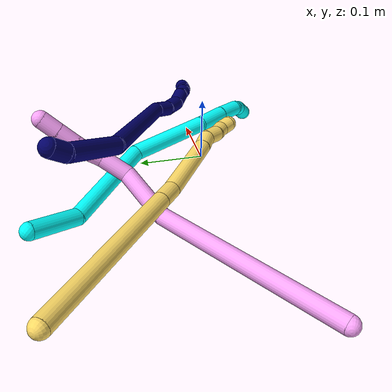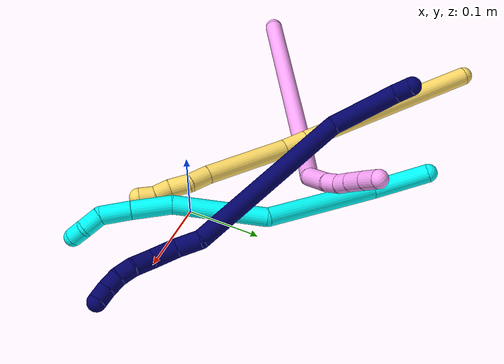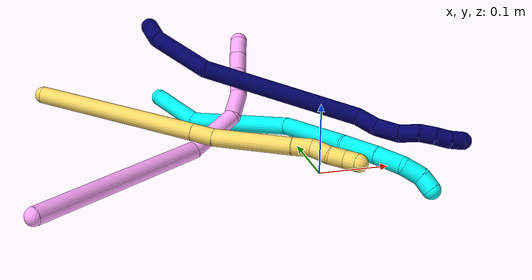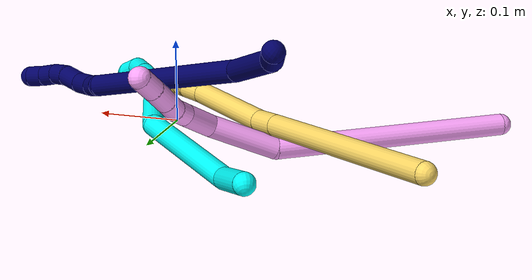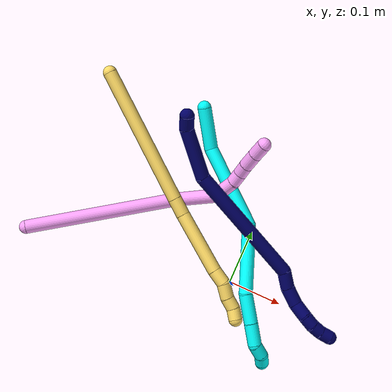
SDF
<sdf version="1.7">
 <world name="default">
  <model name="3">
   <static>0</static>
   <link name="3">
    <collision name="collision-cylinder-e_1_1_4">
     <pose>0.023321 -0.019604 -0.023768 2.45191 0.647927 1.50348</pose>
     <geometry><cylinder><radius>0.0125</radius><length>0.077282</length></cylinder></geometry>
     <surface>
      <friction><ode><mu>1.16</mu><mu2>1.16</mu2><slip1>0</slip1><slip2>0</slip2></ode></friction>
      <contact><ode><kp>1e+06</kp><kd>1</kd><max_vel>0</max_vel><min_depth>0.001</min_depth></ode></contact>
     </surface>
    </collision>
    <visual name="visual-cylinder-e_1_1_4">
     <pose>0.023321 -0.019604 -0.023768 2.45191 0.647927 1.50348</pose>
     <geometry><cylinder><radius>0.0125</radius><length>0.077282</length></cylinder></geometry>
     <material><ambient>0.003922 1 0.996078 1</ambient></material>
    </visual>
    <collision name="collision-cylinder-e_2_4_5">
     <pose>0.061471 -0.082851 -0.110801 2.53771 0.190595 0.595544</pose>
     <geometry><cylinder><radius>0.0125</radius><length>0.156549</length></cylinder></geometry>
     <surface>
      <friction><ode><mu>1.16</mu><mu2>1.16</mu2><slip1>0</slip1><slip2>0</slip2></ode></friction>
      <contact><ode><kp>1e+06</kp><kd>1</kd><max_vel>0</max_vel><min_depth>0.001</min_depth></ode></contact>
     </surface>
    </collision>
    <visual name="visual-cylinder-e_2_4_5">
     <pose>0.061471 -0.082851 -0.110801 2.53771 0.190595 0.595544</pose>
     <geometry><cylinder><radius>0.0125</radius><length>0.156549</length></cylinder></geometry>
     <material><ambient>0.003922 1 0.996078 1</ambient></material>
    </visual>
    <collision name="collision-cylinder-e_3_5_6">
     <pose>0.106876 -0.1366 -0.22748 2.9546 0.512358 2.45404</pose>
     <geometry><cylinder><radius>0.0125</radius><length>0.124744</length></cylinder></geometry>
     <surface>
      <friction><ode><mu>1.16</mu><mu2>1.16</mu2><slip1>0</slip1><slip2>0</slip2></ode></friction>
      <contact><ode><kp>1e+06</kp><kd>1</kd><max_vel>0</max_vel><min_depth>0.001</min_depth></ode></contact>
     </surface>
    </collision>
    <visual name="visual-cylinder-e_3_5_6">
     <pose>0.106876 -0.1366 -0.22748 2.9546 0.512358 2.45404</pose>
     <geometry><cylinder><radius>0.0125</radius><length>0.124744</length></cylinder></geometry>
     <material><ambient>0.003922 1 0.996078 1</ambient></material>
    </visual>
    <collision name="collision-cylinder-e_4_6_7">
     <pose>0.14973 -0.158018 -0.301801 2.64564 0.476732 1.52967</pose>
     <geometry><cylinder><radius>0.0125</radius><length>0.053507</length></cylinder></geometry>
     <surface>
      <friction><ode><mu>1.16</mu><mu2>1.16</mu2><slip1>0</slip1><slip2>0</slip2></ode></friction>
      <contact><ode><kp>1e+06</kp><kd>1</kd><max_vel>0</max_vel><min_depth>0.001</min_depth></ode></contact>
     </surface>
    </collision>
    <visual name="visual-cylinder-e_4_6_7">
     <pose>0.14973 -0.158018 -0.301801 2.64564 0.476732 1.52967</pose>
     <geometry><cylinder><radius>0.0125</radius><length>0.053507</length></cylinder></geometry>
     <material><ambient>0.003922 1 0.996078 1</ambient></material>
    </visual>
    <collision name="collision-cylinder-e_5_7_8">
     <pose>0.171904 -0.178277 -0.337716 2.604 0.515401 1.52664</pose>
     <geometry><cylinder><radius>0.0125</radius><length>0.040162</length></cylinder></geometry>
     <surface>
      <friction><ode><mu>1.16</mu><mu2>1.16</mu2><slip1>0</slip1><slip2>0</slip2></ode></friction>
      <contact><ode><kp>1e+06</kp><kd>1</kd><max_vel>0</max_vel><min_depth>0.001</min_depth></ode></contact>
     </surface>
    </collision>
    <visual name="visual-cylinder-e_5_7_8">
     <pose>0.171904 -0.178277 -0.337716 2.604 0.515401 1.52664</pose>
     <geometry><cylinder><radius>0.0125</radius><length>0.040162</length></cylinder></geometry>
     <material><ambient>0.003922 1 0.996078 1</ambient></material>
    </visual>
    <collision name="collision-cylinder-e_6_8_9">
     <pose>0.187953 -0.19773 -0.357911 2.02939 0.483438 0.755253</pose>
     <geometry><cylinder><radius>0.0125</radius><length>0.026467</length></cylinder></geometry>
     <surface>
      <friction><ode><mu>1.16</mu><mu2>1.16</mu2><slip1>0</slip1><slip2>0</slip2></ode></friction>
      <contact><ode><kp>1e+06</kp><kd>1</kd><max_vel>0</max_vel><min_depth>0.001</min_depth></ode></contact>
     </surface>
    </collision>
    <visual name="visual-cylinder-e_6_8_9">
     <pose>0.187953 -0.19773 -0.357911 2.02939 0.483438 0.755253</pose>
     <geometry><cylinder><radius>0.0125</radius><length>0.026467</length></cylinder></geometry>
     <material><ambient>0.003922 1 0.996078 1</ambient></material>
    </visual>
    <collision name="collision-cylinder-e_7_9_2">
     <pose>0.202407 -0.21455 -0.36522 1.89514 0.89468 1.17713</pose>
     <geometry><cylinder><radius>0.0125</radius><length>0.021288</length></cylinder></geometry>
     <surface>
      <friction><ode><mu>1.16</mu><mu2>1.16</mu2><slip1>0</slip1><slip2>0</slip2></ode></friction>
      <contact><ode><kp>1e+06</kp><kd>1</kd><max_vel>0</max_vel><min_depth>0.001</min_depth></ode></contact>
     </surface>
    </collision>
    <visual name="visual-cylinder-e_7_9_2">
     <pose>0.202407 -0.21455 -0.36522 1.89514 0.89468 1.17713</pose>
     <geometry><cylinder><radius>0.0125</radius><length>0.021288</length></cylinder></geometry>
     <material><ambient>0.003922 1 0.996078 1</ambient></material>
    </visual>
    <collision name="collision-sphere-2">
     <pose>0.21071 -0.220864 -0.367343 0 -0 0</pose>
     <geometry><sphere><radius>0.0125</radius></sphere></geometry>
     <surface>
      <friction><ode><mu>1.16</mu><mu2>1.16</mu2><slip1>0</slip1><slip2>0</slip2></ode></friction>
      <contact><ode><kp>1e+06</kp><kd>1</kd><max_vel>0</max_vel><min_depth>0.001</min_depth></ode></contact>
     </surface>
    </collision>
    <visual name="visual-sphere-2">
     <pose>0.21071 -0.220864 -0.367343 0 -0 0</pose>
     <geometry><sphere><radius>0.0125</radius></sphere></geometry>
     <material><ambient>0.003922 1 0.996078 1</ambient></material>
    </visual>
    <collision name="collision-sphere-9">
     <pose>0.194104 -0.208237 -0.363098 0 -0 0</pose>
     <geometry><sphere><radius>0.0125</radius></sphere></geometry>
     <surface>
      <friction><ode><mu>1.16</mu><mu2>1.16</mu2><slip1>0</slip1><slip2>0</slip2></ode></friction>
      <contact><ode><kp>1e+06</kp><kd>1</kd><max_vel>0</max_vel><min_depth>0.001</min_depth></ode></contact>
     </surface>
    </collision>
    <visual name="visual-sphere-9">
     <pose>0.194104 -0.208237 -0.363098 0 -0 0</pose>
     <geometry><sphere><radius>0.0125</radius></sphere></geometry>
     <material><ambient>0.003922 1 0.996078 1</ambient></material>
    </visual>
    <collision name="collision-sphere-4">
     <pose>0.046643 -0.039208 -0.047537 0 -0 0</pose>
     <geometry><sphere><radius>0.0125</radius></sphere></geometry>
     <surface>
      <friction><ode><mu>1.16</mu><mu2>1.16</mu2><slip1>0</slip1><slip2>0</slip2></ode></friction>
      <contact><ode><kp>1e+06</kp><kd>1</kd><max_vel>0</max_vel><min_depth>0.001</min_depth></ode></contact>
     </surface>
    </collision>
    <visual name="visual-sphere-4">
     <pose>0.046643 -0.039208 -0.047537 0 -0 0</pose>
     <geometry><sphere><radius>0.0125</radius></sphere></geometry>
     <material><ambient>0.003922 1 0.996078 1</ambient></material>
    </visual>
    <collision name="collision-sphere-1">
     <geometry><sphere><radius>0.0125</radius></sphere></geometry>
     <surface>
      <friction><ode><mu>1.16</mu><mu2>1.16</mu2><slip1>0</slip1><slip2>0</slip2></ode></friction>
      <contact><ode><kp>1e+06</kp><kd>1</kd><max_vel>0</max_vel><min_depth>0.001</min_depth></ode></contact>
     </surface>
    </collision>
    <visual name="visual-sphere-1">
     <geometry><sphere><radius>0.0125</radius></sphere></geometry>
     <material><ambient>0.003922 1 0.996078 1</ambient></material>
    </visual>
    <collision name="collision-sphere-8">
     <pose>0.181802 -0.187224 -0.352724 0 -0 0</pose>
     <geometry><sphere><radius>0.0125</radius></sphere></geometry>
     <surface>
      <friction><ode><mu>1.16</mu><mu2>1.16</mu2><slip1>0</slip1><slip2>0</slip2></ode></friction>
      <contact><ode><kp>1e+06</kp><kd>1</kd><max_vel>0</max_vel><min_depth>0.001</min_depth></ode></contact>
     </surface>
    </collision>
    <visual name="visual-sphere-8">
     <pose>0.181802 -0.187224 -0.352724 0 -0 0</pose>
     <geometry><sphere><radius>0.0125</radius></sphere></geometry>
     <material><ambient>0.003922 1 0.996078 1</ambient></material>
    </visual>
    <collision name="collision-sphere-5">
     <pose>0.0763 -0.126493 -0.174065 0 -0 0</pose>
     <geometry><sphere><radius>0.0125</radius></sphere></geometry>
     <surface>
      <friction><ode><mu>1.16</mu><mu2>1.16</mu2><slip1>0</slip1><slip2>0</slip2></ode></friction>
      <contact><ode><kp>1e+06</kp><kd>1</kd><max_vel>0</max_vel><min_depth>0.001</min_depth></ode></contact>
     </surface>
    </collision>
    <visual name="visual-sphere-5">
     <pose>0.0763 -0.126493 -0.174065 0 -0 0</pose>
     <geometry><sphere><radius>0.0125</radius></sphere></geometry>
     <material><ambient>0.003922 1 0.996078 1</ambient></material>
    </visual>
    <collision name="collision-sphere-6">
     <pose>0.137453 -0.146706 -0.280895 0 -0 0</pose>
     <geometry><sphere><radius>0.0125</radius></sphere></geometry>
     <surface>
      <friction><ode><mu>1.16</mu><mu2>1.16</mu2><slip1>0</slip1><slip2>0</slip2></ode></friction>
      <contact><ode><kp>1e+06</kp><kd>1</kd><max_vel>0</max_vel><min_depth>0.001</min_depth></ode></contact>
     </surface>
    </collision>
    <visual name="visual-sphere-6">
     <pose>0.137453 -0.146706 -0.280895 0 -0 0</pose>
     <geometry><sphere><radius>0.0125</radius></sphere></geometry>
     <material><ambient>0.003922 1 0.996078 1</ambient></material>
    </visual>
    <collision name="collision-sphere-7">
     <pose>0.162007 -0.16933 -0.322708 0 -0 0</pose>
     <geometry><sphere><radius>0.0125</radius></sphere></geometry>
     <surface>
      <friction><ode><mu>1.16</mu><mu2>1.16</mu2><slip1>0</slip1><slip2>0</slip2></ode></friction>
      <contact><ode><kp>1e+06</kp><kd>1</kd><max_vel>0</max_vel><min_depth>0.001</min_depth></ode></contact>
     </surface>
    </collision>
    <visual name="visual-sphere-7">
     <pose>0.162007 -0.16933 -0.322708 0 -0 0</pose>
     <geometry><sphere><radius>0.0125</radius></sphere></geometry>
     <material><ambient>0.003922 1 0.996078 1</ambient></material>
    </visual>
    <inertial>
     <pose>0.097914 -0.113882 -0.189038 0 -0 0</pose>
     <mass>0.5</mass>
     <inertia>
      <ixx>0.000501</ixx>
      <ixy>0</ixy>
      <ixz>0</ixz>
      <iyy>0.000262</iyy>
      <iyz>0</iyz>
      <izz>3.2e-05</izz>
     </inertia>
    </inertial>
   </link>
   <pose>-0.173805 0.270595 0.032411 2.50755 0.739184 -1.90192</pose>
  </model>
  <model name="4">
   <static>0</static>
   <link name="4">
    <collision name="collision-cylinder-e_1_1_4">
     <pose>0.100253 0.055476 -0.077902 -2.52277 0.80896 -1.85874</pose>
     <geometry><cylinder><radius>0.0125</radius><length>0.277106</length></cylinder></geometry>
     <surface>
      <friction><ode><mu>1.16</mu><mu2>1.16</mu2><slip1>0</slip1><slip2>0</slip2></ode></friction>
      <contact><ode><kp>1e+06</kp><kd>1</kd><max_vel>0</max_vel><min_depth>0.001</min_depth></ode></contact>
     </surface>
    </collision>
    <visual name="visual-cylinder-e_1_1_4">
     <pose>0.100253 0.055476 -0.077902 -2.52277 0.80896 -1.85874</pose>
     <geometry><cylinder><radius>0.0125</radius><length>0.277106</length></cylinder></geometry>
     <material><ambient>1 0.65098 0.996078 1</ambient></material>
    </visual>
    <collision name="collision-cylinder-e_2_4_5">
     <pose>0.235254 0.11147 -0.176354 -3.11641 1.03658 -3.09743</pose>
     <geometry><cylinder><radius>0.0125</radius><length>0.080749</length></cylinder></geometry>
     <surface>
      <friction><ode><mu>1.16</mu><mu2>1.16</mu2><slip1>0</slip1><slip2>0</slip2></ode></friction>
      <contact><ode><kp>1e+06</kp><kd>1</kd><max_vel>0</max_vel><min_depth>0.001</min_depth></ode></contact>
     </surface>
    </collision>
    <visual name="visual-cylinder-e_2_4_5">
     <pose>0.235254 0.11147 -0.176354 -3.11641 1.03658 -3.09743</pose>
     <geometry><cylinder><radius>0.0125</radius><length>0.080749</length></cylinder></geometry>
     <material><ambient>1 0.65098 0.996078 1</ambient></material>
    </visual>
    <collision name="collision-cylinder-e_3_5_6">
     <pose>0.291294 0.114159 -0.197404 -1.79672 1.46654 -1.69391</pose>
     <geometry><cylinder><radius>0.0125</radius><length>0.042814</length></cylinder></geometry>
     <surface>
      <friction><ode><mu>1.16</mu><mu2>1.16</mu2><slip1>0</slip1><slip2>0</slip2></ode></friction>
      <contact><ode><kp>1e+06</kp><kd>1</kd><max_vel>0</max_vel><min_depth>0.001</min_depth></ode></contact>
     </surface>
    </collision>
    <visual name="visual-cylinder-e_3_5_6">
     <pose>0.291294 0.114159 -0.197404 -1.79672 1.46654 -1.69391</pose>
     <geometry><cylinder><radius>0.0125</radius><length>0.042814</length></cylinder></geometry>
     <material><ambient>1 0.65098 0.996078 1</ambient></material>
    </visual>
    <collision name="collision-cylinder-e_4_6_7">
     <pose>0.323199 0.118082 -0.195662 -0.663527 1.30897 -0.516846</pose>
     <geometry><cylinder><radius>0.0125</radius><length>0.021977</length></cylinder></geometry>
     <surface>
      <friction><ode><mu>1.16</mu><mu2>1.16</mu2><slip1>0</slip1><slip2>0</slip2></ode></friction>
      <contact><ode><kp>1e+06</kp><kd>1</kd><max_vel>0</max_vel><min_depth>0.001</min_depth></ode></contact>
     </surface>
    </collision>
    <visual name="visual-cylinder-e_4_6_7">
     <pose>0.323199 0.118082 -0.195662 -0.663527 1.30897 -0.516846</pose>
     <geometry><cylinder><radius>0.0125</radius><length>0.021977</length></cylinder></geometry>
     <material><ambient>1 0.65098 0.996078 1</ambient></material>
    </visual>
    <collision name="collision-cylinder-e_5_7_8">
     <pose>0.344014 0.119394 -0.190842 0.169087 1.31968 0.13131</pose>
     <geometry><cylinder><radius>0.0125</radius><length>0.021063</length></cylinder></geometry>
     <surface>
      <friction><ode><mu>1.16</mu><mu2>1.16</mu2><slip1>0</slip1><slip2>0</slip2></ode></friction>
      <contact><ode><kp>1e+06</kp><kd>1</kd><max_vel>0</max_vel><min_depth>0.001</min_depth></ode></contact>
     </surface>
    </collision>
    <visual name="visual-cylinder-e_5_7_8">
     <pose>0.344014 0.119394 -0.190842 0.169087 1.31968 0.13131</pose>
     <geometry><cylinder><radius>0.0125</radius><length>0.021063</length></cylinder></geometry>
     <material><ambient>1 0.65098 0.996078 1</ambient></material>
    </visual>
    <collision name="collision-cylinder-e_6_8_9">
     <pose>0.36836 0.118198 -0.185443 0.261893 1.36733 0.213785</pose>
     <geometry><cylinder><radius>0.0125</radius><length>0.028886</length></cylinder></geometry>
     <surface>
      <friction><ode><mu>1.16</mu><mu2>1.16</mu2><slip1>0</slip1><slip2>0</slip2></ode></friction>
      <contact><ode><kp>1e+06</kp><kd>1</kd><max_vel>0</max_vel><min_depth>0.001</min_depth></ode></contact>
     </surface>
    </collision>
    <visual name="visual-cylinder-e_6_8_9">
     <pose>0.36836 0.118198 -0.185443 0.261893 1.36733 0.213785</pose>
     <geometry><cylinder><radius>0.0125</radius><length>0.028886</length></cylinder></geometry>
     <material><ambient>1 0.65098 0.996078 1</ambient></material>
    </visual>
    <collision name="collision-cylinder-e_7_9_2">
     <pose>0.395991 0.116785 -0.180287 0.27393 1.39264 0.229441</pose>
     <geometry><cylinder><radius>0.0125</radius><length>0.027405</length></cylinder></geometry>
     <surface>
      <friction><ode><mu>1.16</mu><mu2>1.16</mu2><slip1>0</slip1><slip2>0</slip2></ode></friction>
      <contact><ode><kp>1e+06</kp><kd>1</kd><max_vel>0</max_vel><min_depth>0.001</min_depth></ode></contact>
     </surface>
    </collision>
    <visual name="visual-cylinder-e_7_9_2">
     <pose>0.395991 0.116785 -0.180287 0.27393 1.39264 0.229441</pose>
     <geometry><cylinder><radius>0.0125</radius><length>0.027405</length></cylinder></geometry>
     <material><ambient>1 0.65098 0.996078 1</ambient></material>
    </visual>
    <collision name="collision-sphere-2">
     <pose>0.409477 0.116128 -0.177949 0 -0 0</pose>
     <geometry><sphere><radius>0.0125</radius></sphere></geometry>
     <surface>
      <friction><ode><mu>1.16</mu><mu2>1.16</mu2><slip1>0</slip1><slip2>0</slip2></ode></friction>
      <contact><ode><kp>1e+06</kp><kd>1</kd><max_vel>0</max_vel><min_depth>0.001</min_depth></ode></contact>
     </surface>
    </collision>
    <visual name="visual-sphere-2">
     <pose>0.409477 0.116128 -0.177949 0 -0 0</pose>
     <geometry><sphere><radius>0.0125</radius></sphere></geometry>
     <material><ambient>1 0.65098 0.996078 1</ambient></material>
    </visual>
    <collision name="collision-sphere-9">
     <pose>0.382505 0.117442 -0.182624 0 -0 0</pose>
     <geometry><sphere><radius>0.0125</radius></sphere></geometry>
     <surface>
      <friction><ode><mu>1.16</mu><mu2>1.16</mu2><slip1>0</slip1><slip2>0</slip2></ode></friction>
      <contact><ode><kp>1e+06</kp><kd>1</kd><max_vel>0</max_vel><min_depth>0.001</min_depth></ode></contact>
     </surface>
    </collision>
    <visual name="visual-sphere-9">
     <pose>0.382505 0.117442 -0.182624 0 -0 0</pose>
     <geometry><sphere><radius>0.0125</radius></sphere></geometry>
     <material><ambient>1 0.65098 0.996078 1</ambient></material>
    </visual>
    <collision name="collision-sphere-4">
     <pose>0.200505 0.110953 -0.155804 0 -0 0</pose>
     <geometry><sphere><radius>0.0125</radius></sphere></geometry>
     <surface>
      <friction><ode><mu>1.16</mu><mu2>1.16</mu2><slip1>0</slip1><slip2>0</slip2></ode></friction>
      <contact><ode><kp>1e+06</kp><kd>1</kd><max_vel>0</max_vel><min_depth>0.001</min_depth></ode></contact>
     </surface>
    </collision>
    <visual name="visual-sphere-4">
     <pose>0.200505 0.110953 -0.155804 0 -0 0</pose>
     <geometry><sphere><radius>0.0125</radius></sphere></geometry>
     <material><ambient>1 0.65098 0.996078 1</ambient></material>
    </visual>
    <collision name="collision-sphere-1">
     <geometry><sphere><radius>0.0125</radius></sphere></geometry>
     <surface>
      <friction><ode><mu>1.16</mu><mu2>1.16</mu2><slip1>0</slip1><slip2>0</slip2></ode></friction>
      <contact><ode><kp>1e+06</kp><kd>1</kd><max_vel>0</max_vel><min_depth>0.001</min_depth></ode></contact>
     </surface>
    </collision>
    <visual name="visual-sphere-1">
     <geometry><sphere><radius>0.0125</radius></sphere></geometry>
     <material><ambient>1 0.65098 0.996078 1</ambient></material>
    </visual>
    <collision name="collision-sphere-8">
     <pose>0.354215 0.118953 -0.188262 0 -0 0</pose>
     <geometry><sphere><radius>0.0125</radius></sphere></geometry>
     <surface>
      <friction><ode><mu>1.16</mu><mu2>1.16</mu2><slip1>0</slip1><slip2>0</slip2></ode></friction>
      <contact><ode><kp>1e+06</kp><kd>1</kd><max_vel>0</max_vel><min_depth>0.001</min_depth></ode></contact>
     </surface>
    </collision>
    <visual name="visual-sphere-8">
     <pose>0.354215 0.118953 -0.188262 0 -0 0</pose>
     <geometry><sphere><radius>0.0125</radius></sphere></geometry>
     <material><ambient>1 0.65098 0.996078 1</ambient></material>
    </visual>
    <collision name="collision-sphere-5">
     <pose>0.270003 0.111988 -0.196905 0 -0 0</pose>
     <geometry><sphere><radius>0.0125</radius></sphere></geometry>
     <surface>
      <friction><ode><mu>1.16</mu><mu2>1.16</mu2><slip1>0</slip1><slip2>0</slip2></ode></friction>
      <contact><ode><kp>1e+06</kp><kd>1</kd><max_vel>0</max_vel><min_depth>0.001</min_depth></ode></contact>
     </surface>
    </collision>
    <visual name="visual-sphere-5">
     <pose>0.270003 0.111988 -0.196905 0 -0 0</pose>
     <geometry><sphere><radius>0.0125</radius></sphere></geometry>
     <material><ambient>1 0.65098 0.996078 1</ambient></material>
    </visual>
    <collision name="collision-sphere-6">
     <pose>0.312585 0.11633 -0.197903 0 -0 0</pose>
     <geometry><sphere><radius>0.0125</radius></sphere></geometry>
     <surface>
      <friction><ode><mu>1.16</mu><mu2>1.16</mu2><slip1>0</slip1><slip2>0</slip2></ode></friction>
      <contact><ode><kp>1e+06</kp><kd>1</kd><max_vel>0</max_vel><min_depth>0.001</min_depth></ode></contact>
     </surface>
    </collision>
    <visual name="visual-sphere-6">
     <pose>0.312585 0.11633 -0.197903 0 -0 0</pose>
     <geometry><sphere><radius>0.0125</radius></sphere></geometry>
     <material><ambient>1 0.65098 0.996078 1</ambient></material>
    </visual>
    <collision name="collision-sphere-7">
     <pose>0.333813 0.119834 -0.193422 0 -0 0</pose>
     <geometry><sphere><radius>0.0125</radius></sphere></geometry>
     <surface>
      <friction><ode><mu>1.16</mu><mu2>1.16</mu2><slip1>0</slip1><slip2>0</slip2></ode></friction>
      <contact><ode><kp>1e+06</kp><kd>1</kd><max_vel>0</max_vel><min_depth>0.001</min_depth></ode></contact>
     </surface>
    </collision>
    <visual name="visual-sphere-7">
     <pose>0.333813 0.119834 -0.193422 0 -0 0</pose>
     <geometry><sphere><radius>0.0125</radius></sphere></geometry>
     <material><ambient>1 0.65098 0.996078 1</ambient></material>
    </visual>
    <inertial>
     <pose>0.19018 0.081972 -0.125793 0 -0 0</pose>
     <mass>0.5</mass>
     <inertia>
      <ixx>-0.001522</ixx>
      <ixy>0</ixy>
      <ixz>0</ixz>
      <iyy>2.2e-05</iyy>
      <iyz>0</iyz>
      <izz>-0.002078</izz>
     </inertia>
    </inertial>
   </link>
   <pose>-0.383187 -0.060268 0.013576 -1.33017 -0.617348 1.07076</pose>
  </model>
  <model name="5">
   <static>0</static>
   <link name="5">
    <collision name="collision-cylinder-e_1_1_4">
     <pose>0.006339 -0.00208 -0.126302 3.12513 0.050141 2.50719</pose>
     <geometry><cylinder><radius>0.0125</radius><length>0.252955</length></cylinder></geometry>
     <surface>
      <friction><ode><mu>1.16</mu><mu2>1.16</mu2><slip1>0</slip1><slip2>0</slip2></ode></friction>
      <contact><ode><kp>1e+06</kp><kd>1</kd><max_vel>0</max_vel><min_depth>0.001</min_depth></ode></contact>
     </surface>
    </collision>
    <visual name="visual-cylinder-e_1_1_4">
     <pose>0.006339 -0.00208 -0.126302 3.12513 0.050141 2.50719</pose>
     <geometry><cylinder><radius>0.0125</radius><length>0.252955</length></cylinder></geometry>
     <material><ambient>1 0.858824 0.4 1</ambient></material>
    </visual>
    <collision name="collision-cylinder-e_2_4_5">
     <pose>0.013418 -0.004192 -0.269017 3.1396 0.045026 3.05314</pose>
     <geometry><cylinder><radius>0.0125</radius><length>0.032861</length></cylinder></geometry>
     <surface>
      <friction><ode><mu>1.16</mu><mu2>1.16</mu2><slip1>0</slip1><slip2>0</slip2></ode></friction>
      <contact><ode><kp>1e+06</kp><kd>1</kd><max_vel>0</max_vel><min_depth>0.001</min_depth></ode></contact>
     </surface>
    </collision>
    <visual name="visual-cylinder-e_2_4_5">
     <pose>0.013418 -0.004192 -0.269017 3.1396 0.045026 3.05314</pose>
     <geometry><cylinder><radius>0.0125</radius><length>0.032861</length></cylinder></geometry>
     <material><ambient>1 0.858824 0.4 1</ambient></material>
    </visual>
    <collision name="collision-cylinder-e_3_5_6">
     <pose>0.023842 -0.007533 -0.342497 3.08368 0.167832 2.47838</pose>
     <geometry><cylinder><radius>0.0125</radius><length>0.115952</length></cylinder></geometry>
     <surface>
      <friction><ode><mu>1.16</mu><mu2>1.16</mu2><slip1>0</slip1><slip2>0</slip2></ode></friction>
      <contact><ode><kp>1e+06</kp><kd>1</kd><max_vel>0</max_vel><min_depth>0.001</min_depth></ode></contact>
     </surface>
    </collision>
    <visual name="visual-cylinder-e_3_5_6">
     <pose>0.023842 -0.007533 -0.342497 3.08368 0.167832 2.47838</pose>
     <geometry><cylinder><radius>0.0125</radius><length>0.115952</length></cylinder></geometry>
     <material><ambient>1 0.858824 0.4 1</ambient></material>
    </visual>
    <collision name="collision-cylinder-e_4_6_7">
     <pose>0.036602 -0.010276 -0.413022 -3.09965 0.22443 -2.77351</pose>
     <geometry><cylinder><radius>0.0125</radius><length>0.027636</length></cylinder></geometry>
     <surface>
      <friction><ode><mu>1.16</mu><mu2>1.16</mu2><slip1>0</slip1><slip2>0</slip2></ode></friction>
      <contact><ode><kp>1e+06</kp><kd>1</kd><max_vel>0</max_vel><min_depth>0.001</min_depth></ode></contact>
     </surface>
    </collision>
    <visual name="visual-cylinder-e_4_6_7">
     <pose>0.036602 -0.010276 -0.413022 -3.09965 0.22443 -2.77351</pose>
     <geometry><cylinder><radius>0.0125</radius><length>0.027636</length></cylinder></geometry>
     <material><ambient>1 0.858824 0.4 1</ambient></material>
    </visual>
    <collision name="collision-cylinder-e_5_7_8">
     <pose>0.037794 -0.011793 -0.439941 2.98814 -0.137373 -1.45992</pose>
     <geometry><cylinder><radius>0.0125</radius><length>0.027497</length></cylinder></geometry>
     <surface>
      <friction><ode><mu>1.16</mu><mu2>1.16</mu2><slip1>0</slip1><slip2>0</slip2></ode></friction>
      <contact><ode><kp>1e+06</kp><kd>1</kd><max_vel>0</max_vel><min_depth>0.001</min_depth></ode></contact>
     </surface>
    </collision>
    <visual name="visual-cylinder-e_5_7_8">
     <pose>0.037794 -0.011793 -0.439941 2.98814 -0.137373 -1.45992</pose>
     <geometry><cylinder><radius>0.0125</radius><length>0.027497</length></cylinder></geometry>
     <material><ambient>1 0.858824 0.4 1</ambient></material>
    </visual>
    <collision name="collision-cylinder-e_6_8_9">
     <pose>0.036469 -0.013452 -0.464554 -3.10373 0.049879 -1.8432</pose>
     <geometry><cylinder><radius>0.0125</radius><length>0.022353</length></cylinder></geometry>
     <surface>
      <friction><ode><mu>1.16</mu><mu2>1.16</mu2><slip1>0</slip1><slip2>0</slip2></ode></friction>
      <contact><ode><kp>1e+06</kp><kd>1</kd><max_vel>0</max_vel><min_depth>0.001</min_depth></ode></contact>
     </surface>
    </collision>
    <visual name="visual-cylinder-e_6_8_9">
     <pose>0.036469 -0.013452 -0.464554 -3.10373 0.049879 -1.8432</pose>
     <geometry><cylinder><radius>0.0125</radius><length>0.022353</length></cylinder></geometry>
     <material><ambient>1 0.858824 0.4 1</ambient></material>
    </visual>
    <collision name="collision-cylinder-e_7_9_2">
     <pose>0.036754 -0.016153 -0.485596 2.83563 -0.026187 -0.169448</pose>
     <geometry><cylinder><radius>0.0125</radius><length>0.020745</length></cylinder></geometry>
     <surface>
      <friction><ode><mu>1.16</mu><mu2>1.16</mu2><slip1>0</slip1><slip2>0</slip2></ode></friction>
      <contact><ode><kp>1e+06</kp><kd>1</kd><max_vel>0</max_vel><min_depth>0.001</min_depth></ode></contact>
     </surface>
    </collision>
    <visual name="visual-cylinder-e_7_9_2">
     <pose>0.036754 -0.016153 -0.485596 2.83563 -0.026187 -0.169448</pose>
     <geometry><cylinder><radius>0.0125</radius><length>0.020745</length></cylinder></geometry>
     <material><ambient>1 0.858824 0.4 1</ambient></material>
    </visual>
    <collision name="collision-sphere-2">
     <pose>0.036483 -0.019276 -0.495484 0 -0 0</pose>
     <geometry><sphere><radius>0.0125</radius></sphere></geometry>
     <surface>
      <friction><ode><mu>1.16</mu><mu2>1.16</mu2><slip1>0</slip1><slip2>0</slip2></ode></friction>
      <contact><ode><kp>1e+06</kp><kd>1</kd><max_vel>0</max_vel><min_depth>0.001</min_depth></ode></contact>
     </surface>
    </collision>
    <visual name="visual-sphere-2">
     <pose>0.036483 -0.019276 -0.495484 0 -0 0</pose>
     <geometry><sphere><radius>0.0125</radius></sphere></geometry>
     <material><ambient>1 0.858824 0.4 1</ambient></material>
    </visual>
    <collision name="collision-sphere-9">
     <pose>0.037026 -0.01303 -0.475709 0 -0 0</pose>
     <geometry><sphere><radius>0.0125</radius></sphere></geometry>
     <surface>
      <friction><ode><mu>1.16</mu><mu2>1.16</mu2><slip1>0</slip1><slip2>0</slip2></ode></friction>
      <contact><ode><kp>1e+06</kp><kd>1</kd><max_vel>0</max_vel><min_depth>0.001</min_depth></ode></contact>
     </surface>
    </collision>
    <visual name="visual-sphere-9">
     <pose>0.037026 -0.01303 -0.475709 0 -0 0</pose>
     <geometry><sphere><radius>0.0125</radius></sphere></geometry>
     <material><ambient>1 0.858824 0.4 1</ambient></material>
    </visual>
    <collision name="collision-sphere-4">
     <pose>0.012678 -0.004159 -0.252603 0 -0 0</pose>
     <geometry><sphere><radius>0.0125</radius></sphere></geometry>
     <surface>
      <friction><ode><mu>1.16</mu><mu2>1.16</mu2><slip1>0</slip1><slip2>0</slip2></ode></friction>
      <contact><ode><kp>1e+06</kp><kd>1</kd><max_vel>0</max_vel><min_depth>0.001</min_depth></ode></contact>
     </surface>
    </collision>
    <visual name="visual-sphere-4">
     <pose>0.012678 -0.004159 -0.252603 0 -0 0</pose>
     <geometry><sphere><radius>0.0125</radius></sphere></geometry>
     <material><ambient>1 0.858824 0.4 1</ambient></material>
    </visual>
    <collision name="collision-sphere-1">
     <geometry><sphere><radius>0.0125</radius></sphere></geometry>
     <surface>
      <friction><ode><mu>1.16</mu><mu2>1.16</mu2><slip1>0</slip1><slip2>0</slip2></ode></friction>
      <contact><ode><kp>1e+06</kp><kd>1</kd><max_vel>0</max_vel><min_depth>0.001</min_depth></ode></contact>
     </surface>
    </collision>
    <visual name="visual-sphere-1">
     <geometry><sphere><radius>0.0125</radius></sphere></geometry>
     <material><ambient>1 0.858824 0.4 1</ambient></material>
    </visual>
    <collision name="collision-sphere-8">
     <pose>0.035911 -0.013875 -0.4534 0 -0 0</pose>
     <geometry><sphere><radius>0.0125</radius></sphere></geometry>
     <surface>
      <friction><ode><mu>1.16</mu><mu2>1.16</mu2><slip1>0</slip1><slip2>0</slip2></ode></friction>
      <contact><ode><kp>1e+06</kp><kd>1</kd><max_vel>0</max_vel><min_depth>0.001</min_depth></ode></contact>
     </surface>
    </collision>
    <visual name="visual-sphere-8">
     <pose>0.035911 -0.013875 -0.4534 0 -0 0</pose>
     <geometry><sphere><radius>0.0125</radius></sphere></geometry>
     <material><ambient>1 0.858824 0.4 1</ambient></material>
    </visual>
    <collision name="collision-sphere-5">
     <pose>0.014157 -0.004225 -0.285431 0 -0 0</pose>
     <geometry><sphere><radius>0.0125</radius></sphere></geometry>
     <surface>
      <friction><ode><mu>1.16</mu><mu2>1.16</mu2><slip1>0</slip1><slip2>0</slip2></ode></friction>
      <contact><ode><kp>1e+06</kp><kd>1</kd><max_vel>0</max_vel><min_depth>0.001</min_depth></ode></contact>
     </surface>
    </collision>
    <visual name="visual-sphere-5">
     <pose>0.014157 -0.004225 -0.285431 0 -0 0</pose>
     <geometry><sphere><radius>0.0125</radius></sphere></geometry>
     <material><ambient>1 0.858824 0.4 1</ambient></material>
    </visual>
    <collision name="collision-sphere-6">
     <pose>0.033527 -0.010841 -0.399562 0 -0 0</pose>
     <geometry><sphere><radius>0.0125</radius></sphere></geometry>
     <surface>
      <friction><ode><mu>1.16</mu><mu2>1.16</mu2><slip1>0</slip1><slip2>0</slip2></ode></friction>
      <contact><ode><kp>1e+06</kp><kd>1</kd><max_vel>0</max_vel><min_depth>0.001</min_depth></ode></contact>
     </surface>
    </collision>
    <visual name="visual-sphere-6">
     <pose>0.033527 -0.010841 -0.399562 0 -0 0</pose>
     <geometry><sphere><radius>0.0125</radius></sphere></geometry>
     <material><ambient>1 0.858824 0.4 1</ambient></material>
    </visual>
    <collision name="collision-sphere-7">
     <pose>0.039677 -0.009711 -0.426482 0 -0 0</pose>
     <geometry><sphere><radius>0.0125</radius></sphere></geometry>
     <surface>
      <friction><ode><mu>1.16</mu><mu2>1.16</mu2><slip1>0</slip1><slip2>0</slip2></ode></friction>
      <contact><ode><kp>1e+06</kp><kd>1</kd><max_vel>0</max_vel><min_depth>0.001</min_depth></ode></contact>
     </surface>
    </collision>
    <visual name="visual-sphere-7">
     <pose>0.039677 -0.009711 -0.426482 0 -0 0</pose>
     <geometry><sphere><radius>0.0125</radius></sphere></geometry>
     <material><ambient>1 0.858824 0.4 1</ambient></material>
    </visual>
    <inertial>
     <pose>0.016875 -0.005563 -0.248943 0 -0 0</pose>
     <mass>0.5</mass>
     <inertia>
      <ixx>-0.000319</ixx>
      <ixy>0</ixy>
      <ixz>0</ixz>
      <iyy>0.002086</iyy>
      <iyz>0</iyz>
      <izz>-9.9e-05</izz>
     </inertia>
    </inertial>
   </link>
   <pose>-0.352291 0.255282 0.057654 -1.36188 -0.923243 0.712102</pose>
  </model>
  <model name="7">
   <static>0</static>
   <link name="7">
    <collision name="collision-cylinder-e_1_1_4">
     <pose>0.004987 0.006053 0.009355 -0.574258 0.420799 -0.125957</pose>
     <geometry><cylinder><radius>0.0125</radius><length>0.024416</length></cylinder></geometry>
     <surface>
      <friction><ode><mu>1.16</mu><mu2>1.16</mu2><slip1>0</slip1><slip2>0</slip2></ode></friction>
      <contact><ode><kp>1e+06</kp><kd>1</kd><max_vel>0</max_vel><min_depth>0.001</min_depth></ode></contact>
     </surface>
    </collision>
    <visual name="visual-cylinder-e_1_1_4">
     <pose>0.004987 0.006053 0.009355 -0.574258 0.420799 -0.125957</pose>
     <geometry><cylinder><radius>0.0125</radius><length>0.024416</length></cylinder></geometry>
     <material><ambient>0.003922 0 0.403922 1</ambient></material>
    </visual>
    <collision name="collision-cylinder-e_2_4_5">
     <pose>0.037497 0.018748 0.054325 -0.184374 0.64971 -0.062251</pose>
     <geometry><cylinder><radius>0.0125</radius><length>0.090995</length></cylinder></geometry>
     <surface>
      <friction><ode><mu>1.16</mu><mu2>1.16</mu2><slip1>0</slip1><slip2>0</slip2></ode></friction>
      <contact><ode><kp>1e+06</kp><kd>1</kd><max_vel>0</max_vel><min_depth>0.001</min_depth></ode></contact>
     </surface>
    </collision>
    <visual name="visual-cylinder-e_2_4_5">
     <pose>0.037497 0.018748 0.054325 -0.184374 0.64971 -0.062251</pose>
     <geometry><cylinder><radius>0.0125</radius><length>0.090995</length></cylinder></geometry>
     <material><ambient>0.003922 0 0.403922 1</ambient></material>
    </visual>
    <collision name="collision-cylinder-e_3_5_6">
     <pose>0.128013 -0.001626 0.181453 0.287052 0.583482 0.086747</pose>
     <geometry><cylinder><radius>0.0125</radius><length>0.228671</length></cylinder></geometry>
     <surface>
      <friction><ode><mu>1.16</mu><mu2>1.16</mu2><slip1>0</slip1><slip2>0</slip2></ode></friction>
      <contact><ode><kp>1e+06</kp><kd>1</kd><max_vel>0</max_vel><min_depth>0.001</min_depth></ode></contact>
     </surface>
    </collision>
    <visual name="visual-cylinder-e_3_5_6">
     <pose>0.128013 -0.001626 0.181453 0.287052 0.583482 0.086747</pose>
     <geometry><cylinder><radius>0.0125</radius><length>0.228671</length></cylinder></geometry>
     <material><ambient>0.003922 0 0.403922 1</ambient></material>
    </visual>
    <collision name="collision-cylinder-e_4_6_7">
     <pose>0.201927 -0.025384 0.284169 -0.282995 0.752539 -0.112443</pose>
     <geometry><cylinder><radius>0.0125</radius><length>0.031964</length></cylinder></geometry>
     <surface>
      <friction><ode><mu>1.16</mu><mu2>1.16</mu2><slip1>0</slip1><slip2>0</slip2></ode></friction>
      <contact><ode><kp>1e+06</kp><kd>1</kd><max_vel>0</max_vel><min_depth>0.001</min_depth></ode></contact>
     </surface>
    </collision>
    <visual name="visual-cylinder-e_4_6_7">
     <pose>0.201927 -0.025384 0.284169 -0.282995 0.752539 -0.112443</pose>
     <geometry><cylinder><radius>0.0125</radius><length>0.031964</length></cylinder></geometry>
     <material><ambient>0.003922 0 0.403922 1</ambient></material>
    </visual>
    <collision name="collision-cylinder-e_5_7_8">
     <pose>0.225243 -0.02297 0.306609 0.074885 0.832801 0.033131</pose>
     <geometry><cylinder><radius>0.0125</radius><length>0.033499</length></cylinder></geometry>
     <surface>
      <friction><ode><mu>1.16</mu><mu2>1.16</mu2><slip1>0</slip1><slip2>0</slip2></ode></friction>
      <contact><ode><kp>1e+06</kp><kd>1</kd><max_vel>0</max_vel><min_depth>0.001</min_depth></ode></contact>
     </surface>
    </collision>
    <visual name="visual-cylinder-e_5_7_8">
     <pose>0.225243 -0.02297 0.306609 0.074885 0.832801 0.033131</pose>
     <geometry><cylinder><radius>0.0125</radius><length>0.033499</length></cylinder></geometry>
     <material><ambient>0.003922 0 0.403922 1</ambient></material>
    </visual>
    <collision name="collision-cylinder-e_6_8_9">
     <pose>0.249113 -0.028175 0.324925 0.552309 0.943965 0.287332</pose>
     <geometry><cylinder><radius>0.0125</radius><length>0.028346</length></cylinder></geometry>
     <surface>
      <friction><ode><mu>1.16</mu><mu2>1.16</mu2><slip1>0</slip1><slip2>0</slip2></ode></friction>
      <contact><ode><kp>1e+06</kp><kd>1</kd><max_vel>0</max_vel><min_depth>0.001</min_depth></ode></contact>
     </surface>
    </collision>
    <visual name="visual-cylinder-e_6_8_9">
     <pose>0.249113 -0.028175 0.324925 0.552309 0.943965 0.287332</pose>
     <geometry><cylinder><radius>0.0125</radius><length>0.028346</length></cylinder></geometry>
     <material><ambient>0.003922 0 0.403922 1</ambient></material>
    </visual>
    <collision name="collision-cylinder-e_7_9_10">
     <pose>0.267702 -0.035287 0.339577 0.348324 0.722947 0.132849</pose>
     <geometry><cylinder><radius>0.0125</radius><length>0.021494</length></cylinder></geometry>
     <surface>
      <friction><ode><mu>1.16</mu><mu2>1.16</mu2><slip1>0</slip1><slip2>0</slip2></ode></friction>
      <contact><ode><kp>1e+06</kp><kd>1</kd><max_vel>0</max_vel><min_depth>0.001</min_depth></ode></contact>
     </surface>
    </collision>
    <visual name="visual-cylinder-e_7_9_10">
     <pose>0.267702 -0.035287 0.339577 0.348324 0.722947 0.132849</pose>
     <geometry><cylinder><radius>0.0125</radius><length>0.021494</length></cylinder></geometry>
     <material><ambient>0.003922 0 0.403922 1</ambient></material>
    </visual>
    <collision name="collision-cylinder-e_8_10_11">
     <pose>0.279752 -0.041657 0.355423 0.41244 0.500614 0.106867</pose>
     <geometry><cylinder><radius>0.0125</radius><length>0.020581</length></cylinder></geometry>
     <surface>
      <friction><ode><mu>1.16</mu><mu2>1.16</mu2><slip1>0</slip1><slip2>0</slip2></ode></friction>
      <contact><ode><kp>1e+06</kp><kd>1</kd><max_vel>0</max_vel><min_depth>0.001</min_depth></ode></contact>
     </surface>
    </collision>
    <visual name="visual-cylinder-e_8_10_11">
     <pose>0.279752 -0.041657 0.355423 0.41244 0.500614 0.106867</pose>
     <geometry><cylinder><radius>0.0125</radius><length>0.020581</length></cylinder></geometry>
     <material><ambient>0.003922 0 0.403922 1</ambient></material>
    </visual>
    <collision name="collision-cylinder-e_9_11_2">
     <pose>0.289016 -0.050645 0.370959 0.636478 0.446465 0.149297</pose>
     <geometry><cylinder><radius>0.0125</radius><length>0.020033</length></cylinder></geometry>
     <surface>
      <friction><ode><mu>1.16</mu><mu2>1.16</mu2><slip1>0</slip1><slip2>0</slip2></ode></friction>
      <contact><ode><kp>1e+06</kp><kd>1</kd><max_vel>0</max_vel><min_depth>0.001</min_depth></ode></contact>
     </surface>
    </collision>
    <visual name="visual-cylinder-e_9_11_2">
     <pose>0.289016 -0.050645 0.370959 0.636478 0.446465 0.149297</pose>
     <geometry><cylinder><radius>0.0125</radius><length>0.020033</length></cylinder></geometry>
     <material><ambient>0.003922 0 0.403922 1</ambient></material>
    </visual>
    <collision name="collision-sphere-2">
     <pose>0.293341 -0.056015 0.378225 0 -0 0</pose>
     <geometry><sphere><radius>0.0125</radius></sphere></geometry>
     <surface>
      <friction><ode><mu>1.16</mu><mu2>1.16</mu2><slip1>0</slip1><slip2>0</slip2></ode></friction>
      <contact><ode><kp>1e+06</kp><kd>1</kd><max_vel>0</max_vel><min_depth>0.001</min_depth></ode></contact>
     </surface>
    </collision>
    <visual name="visual-sphere-2">
     <pose>0.293341 -0.056015 0.378225 0 -0 0</pose>
     <geometry><sphere><radius>0.0125</radius></sphere></geometry>
     <material><ambient>0.003922 0 0.403922 1</ambient></material>
    </visual>
    <collision name="collision-sphere-11">
     <pose>0.284691 -0.045275 0.363693 0 -0 0</pose>
     <geometry><sphere><radius>0.0125</radius></sphere></geometry>
     <surface>
      <friction><ode><mu>1.16</mu><mu2>1.16</mu2><slip1>0</slip1><slip2>0</slip2></ode></friction>
      <contact><ode><kp>1e+06</kp><kd>1</kd><max_vel>0</max_vel><min_depth>0.001</min_depth></ode></contact>
     </surface>
    </collision>
    <visual name="visual-sphere-11">
     <pose>0.284691 -0.045275 0.363693 0 -0 0</pose>
     <geometry><sphere><radius>0.0125</radius></sphere></geometry>
     <material><ambient>0.003922 0 0.403922 1</ambient></material>
    </visual>
    <collision name="collision-sphere-10">
     <pose>0.274812 -0.038038 0.347152 0 -0 0</pose>
     <geometry><sphere><radius>0.0125</radius></sphere></geometry>
     <surface>
      <friction><ode><mu>1.16</mu><mu2>1.16</mu2><slip1>0</slip1><slip2>0</slip2></ode></friction>
      <contact><ode><kp>1e+06</kp><kd>1</kd><max_vel>0</max_vel><min_depth>0.001</min_depth></ode></contact>
     </surface>
    </collision>
    <visual name="visual-sphere-10">
     <pose>0.274812 -0.038038 0.347152 0 -0 0</pose>
     <geometry><sphere><radius>0.0125</radius></sphere></geometry>
     <material><ambient>0.003922 0 0.403922 1</ambient></material>
    </visual>
    <collision name="collision-sphere-9">
     <pose>0.260592 -0.032536 0.332002 0 -0 0</pose>
     <geometry><sphere><radius>0.0125</radius></sphere></geometry>
     <surface>
      <friction><ode><mu>1.16</mu><mu2>1.16</mu2><slip1>0</slip1><slip2>0</slip2></ode></friction>
      <contact><ode><kp>1e+06</kp><kd>1</kd><max_vel>0</max_vel><min_depth>0.001</min_depth></ode></contact>
     </surface>
    </collision>
    <visual name="visual-sphere-9">
     <pose>0.260592 -0.032536 0.332002 0 -0 0</pose>
     <geometry><sphere><radius>0.0125</radius></sphere></geometry>
     <material><ambient>0.003922 0 0.403922 1</ambient></material>
    </visual>
    <collision name="collision-sphere-4">
     <pose>0.009974 0.012106 0.018711 0 -0 0</pose>
     <geometry><sphere><radius>0.0125</radius></sphere></geometry>
     <surface>
      <friction><ode><mu>1.16</mu><mu2>1.16</mu2><slip1>0</slip1><slip2>0</slip2></ode></friction>
      <contact><ode><kp>1e+06</kp><kd>1</kd><max_vel>0</max_vel><min_depth>0.001</min_depth></ode></contact>
     </surface>
    </collision>
    <visual name="visual-sphere-4">
     <pose>0.009974 0.012106 0.018711 0 -0 0</pose>
     <geometry><sphere><radius>0.0125</radius></sphere></geometry>
     <material><ambient>0.003922 0 0.403922 1</ambient></material>
    </visual>
    <collision name="collision-sphere-1">
     <geometry><sphere><radius>0.0125</radius></sphere></geometry>
     <surface>
      <friction><ode><mu>1.16</mu><mu2>1.16</mu2><slip1>0</slip1><slip2>0</slip2></ode></friction>
      <contact><ode><kp>1e+06</kp><kd>1</kd><max_vel>0</max_vel><min_depth>0.001</min_depth></ode></contact>
     </surface>
    </collision>
    <visual name="visual-sphere-1">
     <geometry><sphere><radius>0.0125</radius></sphere></geometry>
     <material><ambient>0.003922 0 0.403922 1</ambient></material>
    </visual>
    <collision name="collision-sphere-8">
     <pose>0.237635 -0.023813 0.317847 0 -0 0</pose>
     <geometry><sphere><radius>0.0125</radius></sphere></geometry>
     <surface>
      <friction><ode><mu>1.16</mu><mu2>1.16</mu2><slip1>0</slip1><slip2>0</slip2></ode></friction>
      <contact><ode><kp>1e+06</kp><kd>1</kd><max_vel>0</max_vel><min_depth>0.001</min_depth></ode></contact>
     </surface>
    </collision>
    <visual name="visual-sphere-8">
     <pose>0.237635 -0.023813 0.317847 0 -0 0</pose>
     <geometry><sphere><radius>0.0125</radius></sphere></geometry>
     <material><ambient>0.003922 0 0.403922 1</ambient></material>
    </visual>
    <collision name="collision-sphere-5">
     <pose>0.065021 0.025389 0.089939 0 -0 0</pose>
     <geometry><sphere><radius>0.0125</radius></sphere></geometry>
     <surface>
      <friction><ode><mu>1.16</mu><mu2>1.16</mu2><slip1>0</slip1><slip2>0</slip2></ode></friction>
      <contact><ode><kp>1e+06</kp><kd>1</kd><max_vel>0</max_vel><min_depth>0.001</min_depth></ode></contact>
     </surface>
    </collision>
    <visual name="visual-sphere-5">
     <pose>0.065021 0.025389 0.089939 0 -0 0</pose>
     <geometry><sphere><radius>0.0125</radius></sphere></geometry>
     <material><ambient>0.003922 0 0.403922 1</ambient></material>
    </visual>
    <collision name="collision-sphere-6">
     <pose>0.191004 -0.028642 0.272967 0 -0 0</pose>
     <geometry><sphere><radius>0.0125</radius></sphere></geometry>
     <surface>
      <friction><ode><mu>1.16</mu><mu2>1.16</mu2><slip1>0</slip1><slip2>0</slip2></ode></friction>
      <contact><ode><kp>1e+06</kp><kd>1</kd><max_vel>0</max_vel><min_depth>0.001</min_depth></ode></contact>
     </surface>
    </collision>
    <visual name="visual-sphere-6">
     <pose>0.191004 -0.028642 0.272967 0 -0 0</pose>
     <geometry><sphere><radius>0.0125</radius></sphere></geometry>
     <material><ambient>0.003922 0 0.403922 1</ambient></material>
    </visual>
    <collision name="collision-sphere-7">
     <pose>0.212851 -0.022127 0.295372 0 -0 0</pose>
     <geometry><sphere><radius>0.0125</radius></sphere></geometry>
     <surface>
      <friction><ode><mu>1.16</mu><mu2>1.16</mu2><slip1>0</slip1><slip2>0</slip2></ode></friction>
      <contact><ode><kp>1e+06</kp><kd>1</kd><max_vel>0</max_vel><min_depth>0.001</min_depth></ode></contact>
     </surface>
    </collision>
    <visual name="visual-sphere-7">
     <pose>0.212851 -0.022127 0.295372 0 -0 0</pose>
     <geometry><sphere><radius>0.0125</radius></sphere></geometry>
     <material><ambient>0.003922 0 0.403922 1</ambient></material>
    </visual>
    <inertial>
     <pose>0.142339 -0.007056 0.19455 0 -0 0</pose>
     <mass>0.5</mass>
     <inertia>
      <ixx>0.000995</ixx>
      <ixy>0</ixy>
      <ixz>0</ixz>
      <iyy>0.001123</iyy>
      <iyz>0</iyz>
      <izz>-0.000347</izz>
     </inertia>
    </inertial>
   </link>
   <pose>-0.191658 0.22968 0.159397 -2.71174 -0.53689 -1.02225</pose>
  </model>
 </world>
</sdf>
